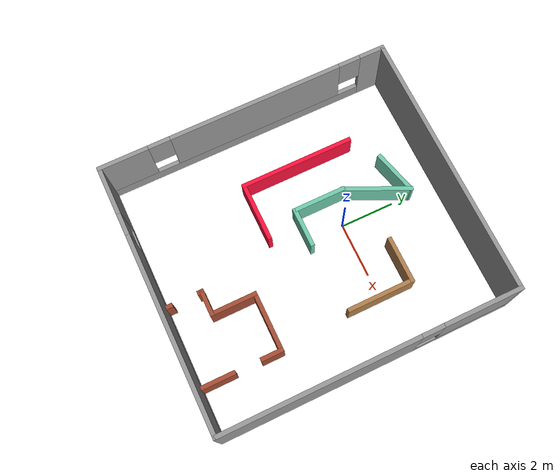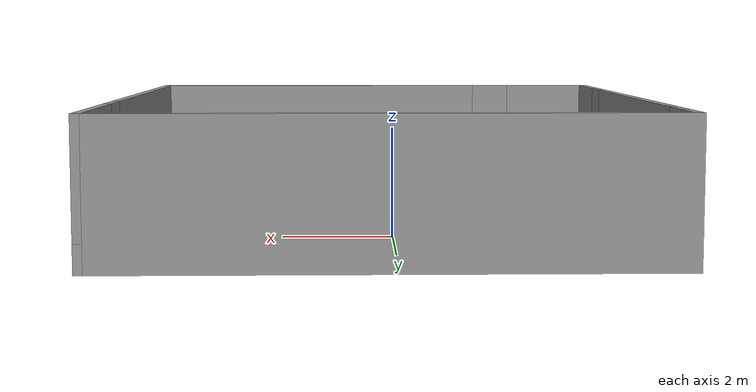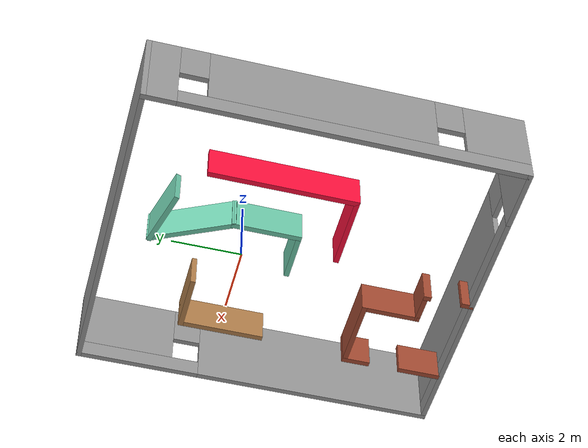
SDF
<?xml version='1.0'?>
<sdf version='1.6'>
  <model name='rightone'>
    <pose frame=''>0.169771 -1.56578 0 0 -0 0</pose>
    <link name='Wall_16'>
      <collision name='Wall_16_Collision'>
        <geometry>
          <box>
            <size>4.25 0.15 1</size>
          </box>
        </geometry>
        <pose frame=''>0 0 0.5 0 -0 0</pose>
      </collision>
      <visual name='Wall_16_Visual'>
        <pose frame=''>0 0 0.5 0 -0 0</pose>
        <geometry>
          <box>
            <size>4.25 0.15 1</size>
          </box>
        </geometry>
        <material>
          <script>
            <uri>file://media/materials/scripts/gazebo.material</uri>
            <name>Gazebo/Grey</name>
          </script>
          <ambient>1 0.0627451 0.235294 1</ambient>
        </material>
        <meta>
          <layer>0</layer>
        </meta>
      </visual>
      <pose frame=''>-2.73877 0.989782 0 0 0 -1.5708</pose>
    </link>
    <link name='Wall_17'>
      <collision name='Wall_17_Collision'>
        <geometry>
          <box>
            <size>2.25 0.15 1</size>
          </box>
        </geometry>
        <pose frame=''>0 0 0.5 0 -0 0</pose>
      </collision>
      <visual name='Wall_17_Visual'>
        <pose frame=''>0 0 0.5 0 -0 0</pose>
        <geometry>
          <box>
            <size>2.25 0.15 1</size>
          </box>
        </geometry>
        <material>
          <script>
            <uri>file://media/materials/scripts/gazebo.material</uri>
            <name>Gazebo/Grey</name>
          </script>
          <ambient>1 0.0627451 0.235294 1</ambient>
        </material>
        <meta>
          <layer>0</layer>
        </meta>
      </visual>
      <pose frame=''>-1.68877 -1.06022 0 0 -0 0</pose>
    </link>
    <link name='Wall_20'>
      <collision name='Wall_20_Collision'>
        <geometry>
          <box>
            <size>1.75 0.15 1</size>
          </box>
        </geometry>
        <pose frame=''>0 0 0.5 0 -0 0</pose>
      </collision>
      <visual name='Wall_20_Visual'>
        <pose frame=''>0 0 0.5 0 -0 0</pose>
        <geometry>
          <box>
            <size>1.75 0.15 1</size>
          </box>
        </geometry>
        <material>
          <script>
            <uri>file://media/materials/scripts/gazebo.material</uri>
            <name>Gazebo/Grey</name>
          </script>
          <ambient>0.435294 0.796078 0.67451 1</ambient>
        </material>
        <meta>
          <layer>0</layer>
        </meta>
      </visual>
      <pose frame=''>-0.890549 3.96314 0 0 -0 0.261799</pose>
    </link>
    <link name='Wall_21'>
      <collision name='Wall_21_Collision'>
        <geometry>
          <box>
            <size>2.53984 0.15 1</size>
          </box>
        </geometry>
        <pose frame=''>0 0 0.5 0 -0 0</pose>
      </collision>
      <visual name='Wall_21_Visual'>
        <pose frame=''>0 0 0.5 0 -0 0</pose>
        <geometry>
          <box>
            <size>2.53984 0.15 1</size>
          </box>
        </geometry>
        <material>
          <script>
            <uri>file://media/materials/scripts/gazebo.material</uri>
            <name>Gazebo/Grey</name>
          </script>
          <ambient>0.435294 0.796078 0.67451 1</ambient>
        </material>
        <meta>
          <layer>0</layer>
        </meta>
      </visual>
      <pose frame=''>-0.630789 3.09099 0 0 0 -2.01452</pose>
    </link>
    <link name='Wall_22'>
      <collision name='Wall_22_Collision'>
        <geometry>
          <box>
            <size>2 0.15 1</size>
          </box>
        </geometry>
        <pose frame=''>0 0 0.5 0 -0 0</pose>
      </collision>
      <visual name='Wall_22_Visual'>
        <pose frame=''>0 0 0.5 0 -0 0</pose>
        <geometry>
          <box>
            <size>2 0.15 1</size>
          </box>
        </geometry>
        <material>
          <script>
            <uri>file://media/materials/scripts/gazebo.material</uri>
            <name>Gazebo/Grey</name>
          </script>
          <ambient>0.435294 0.796078 0.67451 1</ambient>
        </material>
        <meta>
          <layer>0</layer>
        </meta>
      </visual>
      <pose frame=''>-1.14377 1.08678 0 0 0 -1.5708</pose>
    </link>
    <link name='Wall_23'>
      <collision name='Wall_23_Collision'>
        <geometry>
          <box>
            <size>1.5 0.15 1</size>
          </box>
        </geometry>
        <pose frame=''>0 0 0.5 0 -0 0</pose>
      </collision>
      <visual name='Wall_23_Visual'>
        <pose frame=''>0 0 0.5 0 -0 0</pose>
        <geometry>
          <box>
            <size>1.5 0.15 1</size>
          </box>
        </geometry>
        <material>
          <script>
            <uri>file://media/materials/scripts/gazebo.material</uri>
            <name>Gazebo/Grey</name>
          </script>
          <ambient>0.435294 0.796078 0.67451 1</ambient>
        </material>
        <meta>
          <layer>0</layer>
        </meta>
      </visual>
      <pose frame=''>-0.468771 0.161782 0 0 -0 0</pose>
    </link>
    <link name='Wall_25'>
      <collision name='Wall_25_Collision'>
        <geometry>
          <box>
            <size>1.75 0.15 1</size>
          </box>
        </geometry>
        <pose frame=''>0 0 0.5 0 -0 0</pose>
      </collision>
      <visual name='Wall_25_Visual'>
        <pose frame=''>0 0 0.5 0 -0 0</pose>
        <geometry>
          <box>
            <size>1.75 0.15 1</size>
          </box>
        </geometry>
        <material>
          <script>
            <uri>file://media/materials/scripts/gazebo.material</uri>
            <name>Gazebo/Wood</name>
          </script>
          <ambient>1 1 1 1</ambient>
        </material>
        <meta>
          <layer>0</layer>
        </meta>
      </visual>
      <pose frame=''>2.02823 2.65378 0 0 -0 0</pose>
    </link>
    <link name='Wall_26'>
      <collision name='Wall_26_Collision'>
        <geometry>
          <box>
            <size>2.5 0.15 1</size>
          </box>
        </geometry>
        <pose frame=''>0 0 0.5 0 -0 0</pose>
      </collision>
      <visual name='Wall_26_Visual'>
        <pose frame=''>0 0 0.5 0 -0 0</pose>
        <geometry>
          <box>
            <size>2.5 0.15 1</size>
          </box>
        </geometry>
        <material>
          <script>
            <uri>file://media/materials/scripts/gazebo.material</uri>
            <name>Gazebo/Wood</name>
          </script>
          <ambient>1 1 1 1</ambient>
        </material>
        <meta>
          <layer>0</layer>
        </meta>
      </visual>
      <pose frame=''>2.82823 1.47878 0 0 0 -1.5708</pose>
    </link>
    <link name='Wall_28'>
      <pose frame=''>0.109229 -4.59822 0 0 -0 1.5708</pose>
      <visual name='Wall_28_Visual_0'>
        <pose frame=''>-0.567304 0 0.5 0 -0 0</pose>
        <geometry>
          <box>
            <size>0.379084 0.15 1</size>
          </box>
        </geometry>
        <material>
          <script>
            <uri>file://media/materials/scripts/gazebo.material</uri>
            <name>Gazebo/Bricks</name>
          </script>
          <ambient>1 1 1 1</ambient>
        </material>
        <meta>
          <layer>0</layer>
        </meta>
      </visual>
      <collision name='Wall_28_Collision_0'>
        <geometry>
          <box>
            <size>0.379084 0.15 1</size>
          </box>
        </geometry>
        <pose frame=''>-0.567304 0 0.5 0 -0 0</pose>
      </collision>
      <visual name='Wall_28_Visual_1'>
        <pose frame=''>0.639542 0 0.5 0 -0 0</pose>
        <geometry>
          <box>
            <size>0.234608 0.15 1</size>
          </box>
        </geometry>
        <material>
          <script>
            <uri>file://media/materials/scripts/gazebo.material</uri>
            <name>Gazebo/Bricks</name>
          </script>
          <ambient>1 1 1 1</ambient>
        </material>
        <meta>
          <layer>0</layer>
        </meta>
      </visual>
      <collision name='Wall_28_Collision_1'>
        <geometry>
          <box>
            <size>0.234608 0.15 1</size>
          </box>
        </geometry>
        <pose frame=''>0.639542 0 0.5 0 -0 0</pose>
      </collision>
    </link>
    <link name='Wall_29'>
      <collision name='Wall_29_Collision'>
        <geometry>
          <box>
            <size>1 0.15 1</size>
          </box>
        </geometry>
        <pose frame=''>0 0 0.5 0 -0 0</pose>
      </collision>
      <visual name='Wall_29_Visual'>
        <pose frame=''>0 0 0.5 0 -0 0</pose>
        <geometry>
          <box>
            <size>1 0.15 1</size>
          </box>
        </geometry>
        <material>
          <script>
            <uri>file://media/materials/scripts/gazebo.material</uri>
            <name>Gazebo/Bricks</name>
          </script>
          <ambient>1 1 1 1</ambient>
        </material>
        <meta>
          <layer>0</layer>
        </meta>
      </visual>
      <pose frame=''>0.534229 -3.91622 0 0 -0 0</pose>
    </link>
    <link name='Wall_3'>
      <pose frame=''>-4.8 0 0 0 0 -1.5708</pose>
      <visual name='Wall_3_Visual_0'>
        <pose frame=''>-4.89136 0 1.25 0 -0 0</pose>
        <geometry>
          <box>
            <size>0.967284 0.15 2.5</size>
          </box>
        </geometry>
        <material>
          <script>
            <uri>file://media/materials/scripts/gazebo.material</uri>
            <name>Gazebo/Grey</name>
          </script>
          <ambient>1 1 1 1</ambient>
        </material>
        <meta>
          <layer>0</layer>
        </meta>
      </visual>
      <collision name='Wall_3_Collision_0'>
        <geometry>
          <box>
            <size>0.967284 0.15 2.5</size>
          </box>
        </geometry>
        <pose frame=''>-4.89136 0 1.25 0 -0 0</pose>
      </collision>
      <visual name='Wall_3_Visual_1'>
        <pose frame=''>0.483642 0 0.25 0 -0 0</pose>
        <geometry>
          <box>
            <size>9.78272 0.15 0.5</size>
          </box>
        </geometry>
        <material>
          <script>
            <uri>file://media/materials/scripts/gazebo.material</uri>
            <name>Gazebo/Grey</name>
          </script>
          <ambient>1 1 1 1</ambient>
        </material>
        <meta>
          <layer>0</layer>
        </meta>
      </visual>
      <collision name='Wall_3_Collision_1'>
        <geometry>
          <box>
            <size>9.78272 0.15 0.5</size>
          </box>
        </geometry>
        <pose frame=''>0.483642 0 0.25 0 -0 0</pose>
      </collision>
      <visual name='Wall_3_Visual_2'>
        <pose frame=''>-0.429713 0 1.5 0 -0 0</pose>
        <geometry>
          <box>
            <size>6.35601 0.15 2</size>
          </box>
        </geometry>
        <material>
          <script>
            <uri>file://media/materials/scripts/gazebo.material</uri>
            <name>Gazebo/Grey</name>
          </script>
          <ambient>1 1 1 1</ambient>
        </material>
        <meta>
          <layer>0</layer>
        </meta>
      </visual>
      <collision name='Wall_3_Collision_2'>
        <geometry>
          <box>
            <size>6.35601 0.15 2</size>
          </box>
        </geometry>
        <pose frame=''>-0.429713 0 1.5 0 -0 0</pose>
      </collision>
      <visual name='Wall_3_Visual_3'>
        <pose frame=''>4.46164 0 1.5 0 -0 0</pose>
        <geometry>
          <box>
            <size>1.82671 0.15 2</size>
          </box>
        </geometry>
        <material>
          <script>
            <uri>file://media/materials/scripts/gazebo.material</uri>
            <name>Gazebo/Grey</name>
          </script>
          <ambient>1 1 1 1</ambient>
        </material>
        <meta>
          <layer>0</layer>
        </meta>
      </visual>
      <collision name='Wall_3_Collision_3'>
        <geometry>
          <box>
            <size>1.82671 0.15 2</size>
          </box>
        </geometry>
        <pose frame=''>4.46164 0 1.5 0 -0 0</pose>
      </collision>
      <visual name='Wall_3_Visual_4'>
        <pose frame=''>-4.00772 0 1.9 0 -0 0</pose>
        <geometry>
          <box>
            <size>0.8 0.15 1.2</size>
          </box>
        </geometry>
        <material>
          <script>
            <uri>file://media/materials/scripts/gazebo.material</uri>
            <name>Gazebo/Grey</name>
          </script>
          <ambient>1 1 1 1</ambient>
        </material>
        <meta>
          <layer>0</layer>
        </meta>
      </visual>
      <collision name='Wall_3_Collision_4'>
        <geometry>
          <box>
            <size>0.8 0.15 1.2</size>
          </box>
        </geometry>
        <pose frame=''>-4.00772 0 1.9 0 -0 0</pose>
      </collision>
      <visual name='Wall_3_Visual_5'>
        <pose frame=''>3.14829 0 1.9 0 -0 0</pose>
        <geometry>
          <box>
            <size>0.8 0.15 1.2</size>
          </box>
        </geometry>
        <material>
          <script>
            <uri>file://media/materials/scripts/gazebo.material</uri>
            <name>Gazebo/Grey</name>
          </script>
          <ambient>1 1 1 1</ambient>
        </material>
        <meta>
          <layer>0</layer>
        </meta>
      </visual>
      <collision name='Wall_3_Collision_5'>
        <geometry>
          <box>
            <size>0.8 0.15 1.2</size>
          </box>
        </geometry>
        <pose frame=''>3.14829 0 1.9 0 -0 0</pose>
      </collision>
    </link>
    <link name='Wall_30'>
      <collision name='Wall_30_Collision'>
        <geometry>
          <box>
            <size>1.736 0.15 1</size>
          </box>
        </geometry>
        <pose frame=''>0 0 0.5 0 -0 0</pose>
      </collision>
      <visual name='Wall_30_Visual'>
        <pose frame=''>0 0 0.5 0 -0 0</pose>
        <geometry>
          <box>
            <size>1.736 0.15 1</size>
          </box>
        </geometry>
        <material>
          <script>
            <uri>file://media/materials/scripts/gazebo.material</uri>
            <name>Gazebo/Bricks</name>
          </script>
          <ambient>1 1 1 1</ambient>
        </material>
        <meta>
          <layer>0</layer>
        </meta>
      </visual>
      <pose frame=''>0.959229 -3.12322 0 0 -0 1.5708</pose>
    </link>
    <link name='Wall_31'>
      <collision name='Wall_31_Collision'>
        <geometry>
          <box>
            <size>2.25 0.15 1</size>
          </box>
        </geometry>
        <pose frame=''>0 0 0.5 0 -0 0</pose>
      </collision>
      <visual name='Wall_31_Visual'>
        <pose frame=''>0 0 0.5 0 -0 0</pose>
        <geometry>
          <box>
            <size>2.25 0.15 1</size>
          </box>
        </geometry>
        <material>
          <script>
            <uri>file://media/materials/scripts/gazebo.material</uri>
            <name>Gazebo/Bricks</name>
          </script>
          <ambient>1 1 1 1</ambient>
        </material>
        <meta>
          <layer>0</layer>
        </meta>
      </visual>
      <pose frame=''>2.00923 -2.33022 0 0 -0 0</pose>
    </link>
    <link name='Wall_32'>
      <pose frame=''>3.05923 -3.75522 0 0 0 -1.5708</pose>
      <visual name='Wall_32_Visual_0'>
        <pose frame=''>-1.08452 0 0.5 0 -0 0</pose>
        <geometry>
          <box>
            <size>0.830966 0.15 1</size>
          </box>
        </geometry>
        <material>
          <script>
            <uri>file://media/materials/scripts/gazebo.material</uri>
            <name>Gazebo/Bricks</name>
          </script>
          <ambient>1 1 1 1</ambient>
        </material>
        <meta>
          <layer>0</layer>
        </meta>
      </visual>
      <collision name='Wall_32_Collision_0'>
        <geometry>
          <box>
            <size>0.830966 0.15 1</size>
          </box>
        </geometry>
        <pose frame=''>-1.08452 0 0.5 0 -0 0</pose>
      </collision>
      <visual name='Wall_32_Visual_1'>
        <pose frame=''>0.865483 0 0.5 0 -0 0</pose>
        <geometry>
          <box>
            <size>1.26903 0.15 1</size>
          </box>
        </geometry>
        <material>
          <script>
            <uri>file://media/materials/scripts/gazebo.material</uri>
            <name>Gazebo/Bricks</name>
          </script>
          <ambient>1 1 1 1</ambient>
        </material>
        <meta>
          <layer>0</layer>
        </meta>
      </visual>
      <collision name='Wall_32_Collision_1'>
        <geometry>
          <box>
            <size>1.26903 0.15 1</size>
          </box>
        </geometry>
        <pose frame=''>0.865483 0 0.5 0 -0 0</pose>
      </collision>
    </link>
    <link name='Wall_4'>
      <pose frame=''>0 -5.3 0 0 -0 0</pose>
      <visual name='Wall_4_Visual_0'>
        <pose frame=''>-3.95911 0 1.25 0 -0 0</pose>
        <geometry>
          <box>
            <size>1.83179 0.15 2.5</size>
          </box>
        </geometry>
        <material>
          <script>
            <uri>file://media/materials/scripts/gazebo.material</uri>
            <name>Gazebo/Grey</name>
          </script>
          <ambient>1 1 1 1</ambient>
        </material>
        <meta>
          <layer>0</layer>
        </meta>
      </visual>
      <collision name='Wall_4_Collision_0'>
        <geometry>
          <box>
            <size>1.83179 0.15 2.5</size>
          </box>
        </geometry>
        <pose frame=''>-3.95911 0 1.25 0 -0 0</pose>
      </collision>
      <visual name='Wall_4_Visual_1'>
        <pose frame=''>0.915894 0 0.25 0 -0 0</pose>
        <geometry>
          <box>
            <size>7.91821 0.15 0.5</size>
          </box>
        </geometry>
        <material>
          <script>
            <uri>file://media/materials/scripts/gazebo.material</uri>
            <name>Gazebo/Grey</name>
          </script>
          <ambient>1 1 1 1</ambient>
        </material>
        <meta>
          <layer>0</layer>
        </meta>
      </visual>
      <collision name='Wall_4_Collision_1'>
        <geometry>
          <box>
            <size>7.91821 0.15 0.5</size>
          </box>
        </geometry>
        <pose frame=''>0.915894 0 0.25 0 -0 0</pose>
      </collision>
      <visual name='Wall_4_Visual_2'>
        <pose frame=''>1.31589 0 1.5 0 -0 0</pose>
        <geometry>
          <box>
            <size>7.11821 0.15 2</size>
          </box>
        </geometry>
        <material>
          <script>
            <uri>file://media/materials/scripts/gazebo.material</uri>
            <name>Gazebo/Grey</name>
          </script>
          <ambient>1 1 1 1</ambient>
        </material>
        <meta>
          <layer>0</layer>
        </meta>
      </visual>
      <collision name='Wall_4_Collision_2'>
        <geometry>
          <box>
            <size>7.11821 0.15 2</size>
          </box>
        </geometry>
        <pose frame=''>1.31589 0 1.5 0 -0 0</pose>
      </collision>
      <visual name='Wall_4_Visual_3'>
        <pose frame=''>-2.64321 0 1.9 0 -0 0</pose>
        <geometry>
          <box>
            <size>0.8 0.15 1.2</size>
          </box>
        </geometry>
        <material>
          <script>
            <uri>file://media/materials/scripts/gazebo.material</uri>
            <name>Gazebo/Grey</name>
          </script>
          <ambient>1 1 1 1</ambient>
        </material>
        <meta>
          <layer>0</layer>
        </meta>
      </visual>
      <collision name='Wall_4_Collision_3'>
        <geometry>
          <box>
            <size>0.8 0.15 1.2</size>
          </box>
        </geometry>
        <pose frame=''>-2.64321 0 1.9 0 -0 0</pose>
      </collision>
    </link>
    <link name='Wall_5'>
      <pose frame=''>4.8 0 0 0 -0 1.5708</pose>
      <visual name='Wall_5_Visual_0'>
        <pose frame=''>-1.8194 0 1.25 0 -0 0</pose>
        <geometry>
          <box>
            <size>7.11119 0.15 2.5</size>
          </box>
        </geometry>
        <material>
          <script>
            <uri>file://media/materials/scripts/gazebo.material</uri>
            <name>Gazebo/Grey</name>
          </script>
          <ambient>1 1 1 1</ambient>
        </material>
        <meta>
          <layer>0</layer>
        </meta>
      </visual>
      <collision name='Wall_5_Collision_0'>
        <geometry>
          <box>
            <size>7.11119 0.15 2.5</size>
          </box>
        </geometry>
        <pose frame=''>-1.8194 0 1.25 0 -0 0</pose>
      </collision>
      <visual name='Wall_5_Visual_1'>
        <pose frame=''>3.5556 0 0.25 0 -0 0</pose>
        <geometry>
          <box>
            <size>3.63881 0.15 0.5</size>
          </box>
        </geometry>
        <material>
          <script>
            <uri>file://media/materials/scripts/gazebo.material</uri>
            <name>Gazebo/Grey</name>
          </script>
          <ambient>1 1 1 1</ambient>
        </material>
        <meta>
          <layer>0</layer>
        </meta>
      </visual>
      <collision name='Wall_5_Collision_1'>
        <geometry>
          <box>
            <size>3.63881 0.15 0.5</size>
          </box>
        </geometry>
        <pose frame=''>3.5556 0 0.25 0 -0 0</pose>
      </collision>
      <visual name='Wall_5_Visual_2'>
        <pose frame=''>3.9556 0 1.5 0 -0 0</pose>
        <geometry>
          <box>
            <size>2.83881 0.15 2</size>
          </box>
        </geometry>
        <material>
          <script>
            <uri>file://media/materials/scripts/gazebo.material</uri>
            <name>Gazebo/Grey</name>
          </script>
          <ambient>1 1 1 1</ambient>
        </material>
        <meta>
          <layer>0</layer>
        </meta>
      </visual>
      <collision name='Wall_5_Collision_2'>
        <geometry>
          <box>
            <size>2.83881 0.15 2</size>
          </box>
        </geometry>
        <pose frame=''>3.9556 0 1.5 0 -0 0</pose>
      </collision>
      <visual name='Wall_5_Visual_3'>
        <pose frame=''>2.13619 0 1.9 0 -0 0</pose>
        <geometry>
          <box>
            <size>0.8 0.15 1.2</size>
          </box>
        </geometry>
        <material>
          <script>
            <uri>file://media/materials/scripts/gazebo.material</uri>
            <name>Gazebo/Grey</name>
          </script>
          <ambient>1 1 1 1</ambient>
        </material>
        <meta>
          <layer>0</layer>
        </meta>
      </visual>
      <collision name='Wall_5_Collision_3'>
        <geometry>
          <box>
            <size>0.8 0.15 1.2</size>
          </box>
        </geometry>
        <pose frame=''>2.13619 0 1.9 0 -0 0</pose>
      </collision>
    </link>
    <link name='Wall_6'>
      <collision name='Wall_6_Collision'>
        <geometry>
          <box>
            <size>9.75 0.15 2.5</size>
          </box>
        </geometry>
        <pose frame=''>0 0 1.25 0 -0 0</pose>
      </collision>
      <visual name='Wall_6_Visual'>
        <pose frame=''>0 0 1.25 0 -0 0</pose>
        <geometry>
          <box>
            <size>9.75 0.15 2.5</size>
          </box>
        </geometry>
        <material>
          <script>
            <uri>file://media/materials/scripts/gazebo.material</uri>
            <name>Gazebo/Grey</name>
          </script>
          <ambient>1 1 1 1</ambient>
        </material>
        <meta>
          <layer>0</layer>
        </meta>
      </visual>
      <pose frame=''>0 5.3 0 0 -0 3.14159</pose>
    </link>
    <static>1</static>
  </model>
</sdf>
